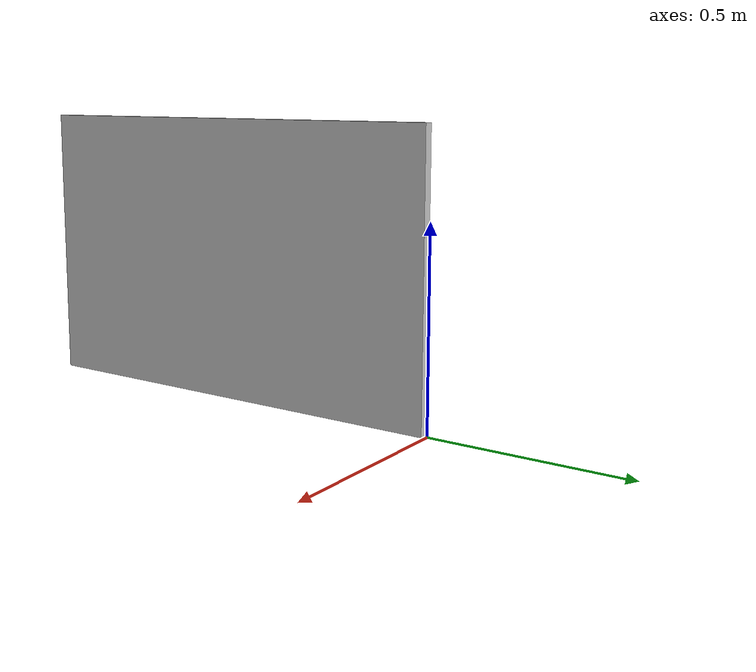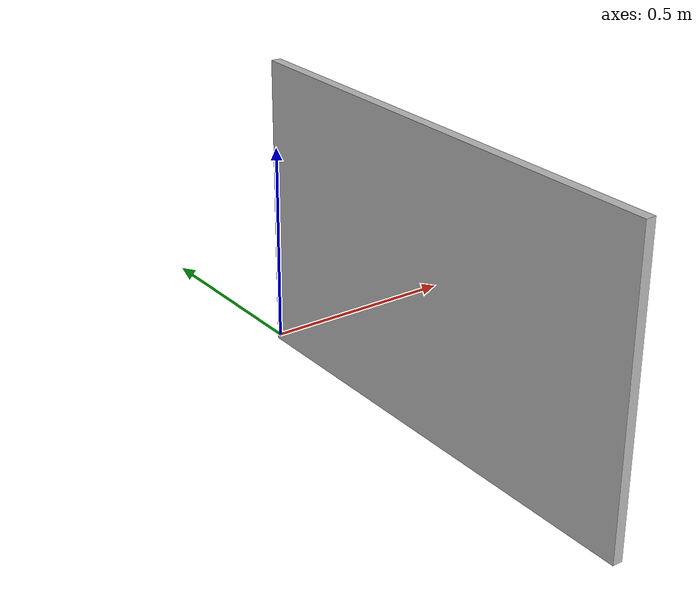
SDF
<?xml version='1.0'?>
<sdf version="1.4">
    <model name="plywood_panel">
        <static>true</static>

        <link name="main">
            <pose>0 0 0 0 0 0</pose>
            <collision name="collision">
                <!-- Match the visual's orientation and offset so collision aligns exactly -->
                <pose>0.01 -0.01 0 0 -1.571 0</pose>
                <geometry>
                    <mesh>
                        <scale>1.2 1.2 1.2</scale>
                        <uri>model://plywood_panel/meshes/plywood.dae</uri>
                    </mesh>
                </geometry>
            </collision>

            <visual name="visual">
                <!-- offset origin to align to the center of one grid edge and rotate to vertical position -->
                <pose>0.01 -0.01 0 0 -1.571 0</pose>
                <geometry>
                    <mesh>
                        <scale>1.2 1.2 1.2</scale>
                        <!-- measures 0.98 x 0.6 x 0.02 mt, origin is at one corner of the panel -->
                        <uri>model://plywood_panel/meshes/plywood.dae</uri>
                    </mesh>
                </geometry>
            </visual>
        </link>

    </model>
</sdf>
